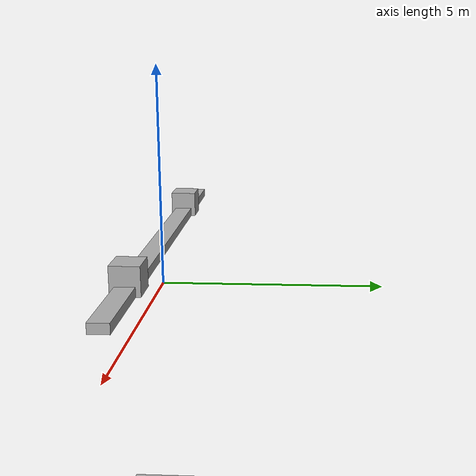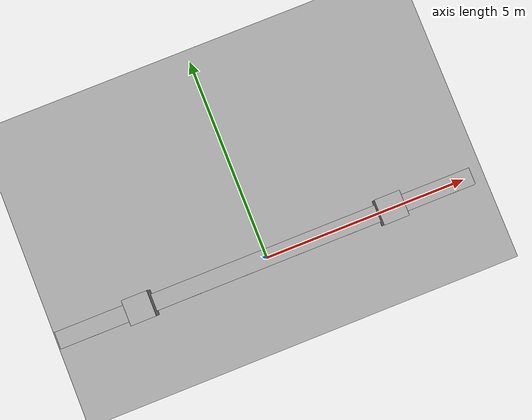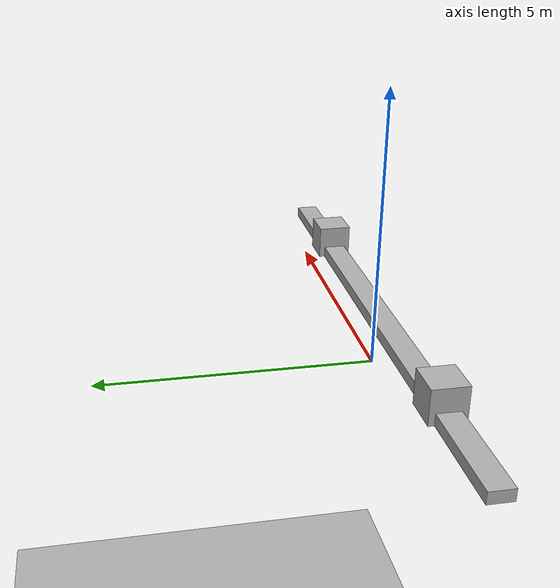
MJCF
<mujoco>
  <option gravity="0 0 -9.81" />
  <worldbody>
    <light diffuse="0.5 0.5 0.5" pos="0 0 5" />
    <body name="ground" pos="0 0 -10">
      <geom type="plane" size="30 30 0.1" rgba="0.7 0.7 0.7 1" />
    </body>
    <body name="seesaw" pos="0 0 1">
      <geom type="box" size="5 0.2 0.1" mass="0.1" rgba="0.7 0.7 0.7 1" />
      <joint type="hinge" axis="0 1 0" pos="0 0 1" />
    </body>
    <body name="mass_left" pos="-3 0 1.2">
      <geom type="box" size="0.3 0.3 0.3" mass="2" rgba="0.7 0.7 0.7 1" />
    </body>
    <body name="mass_right" pos="3 0 1.2">
      <geom type="box" size="0.3 0.3 0.3" mass="4" rgba="0.7 0.7 0.7 1" />
    </body>
  </worldbody>
</mujoco>
